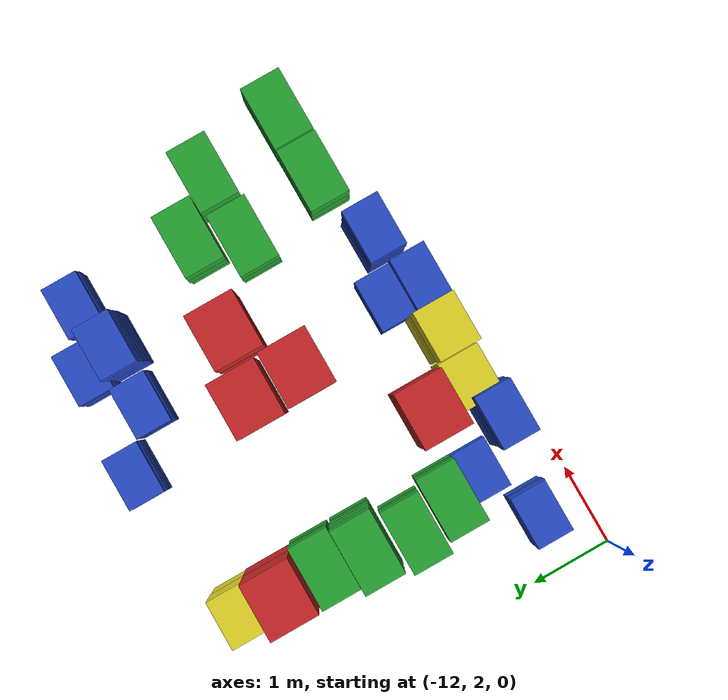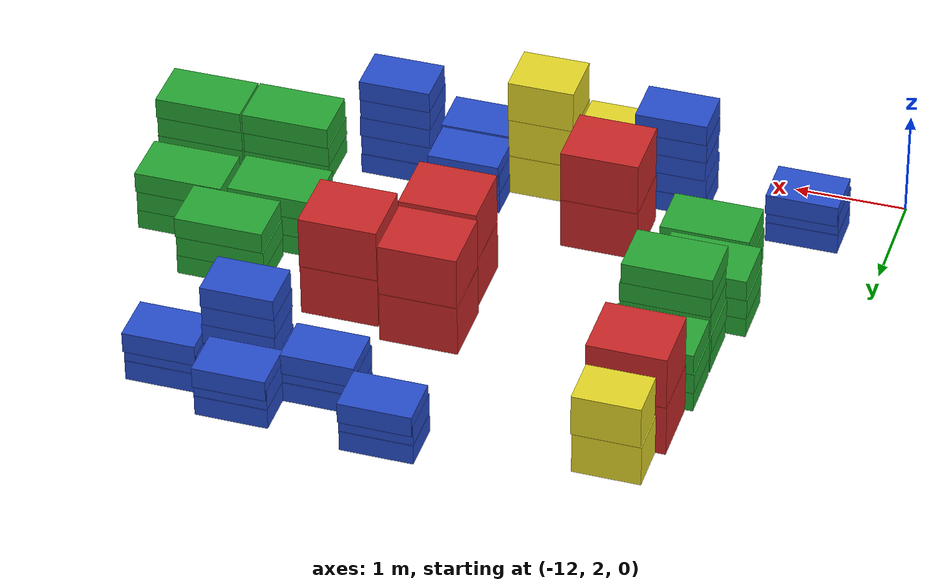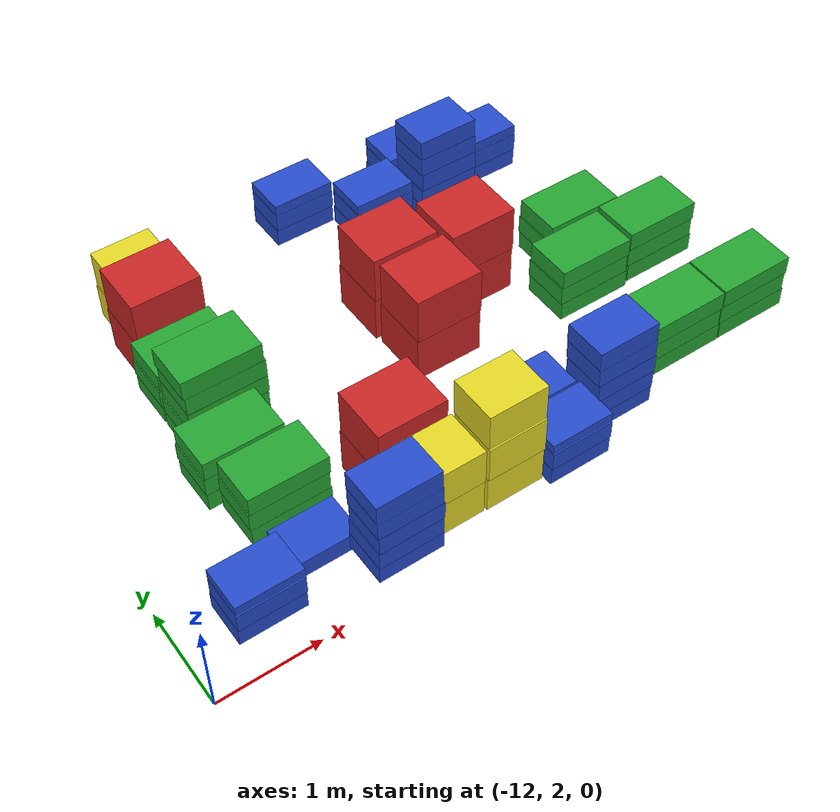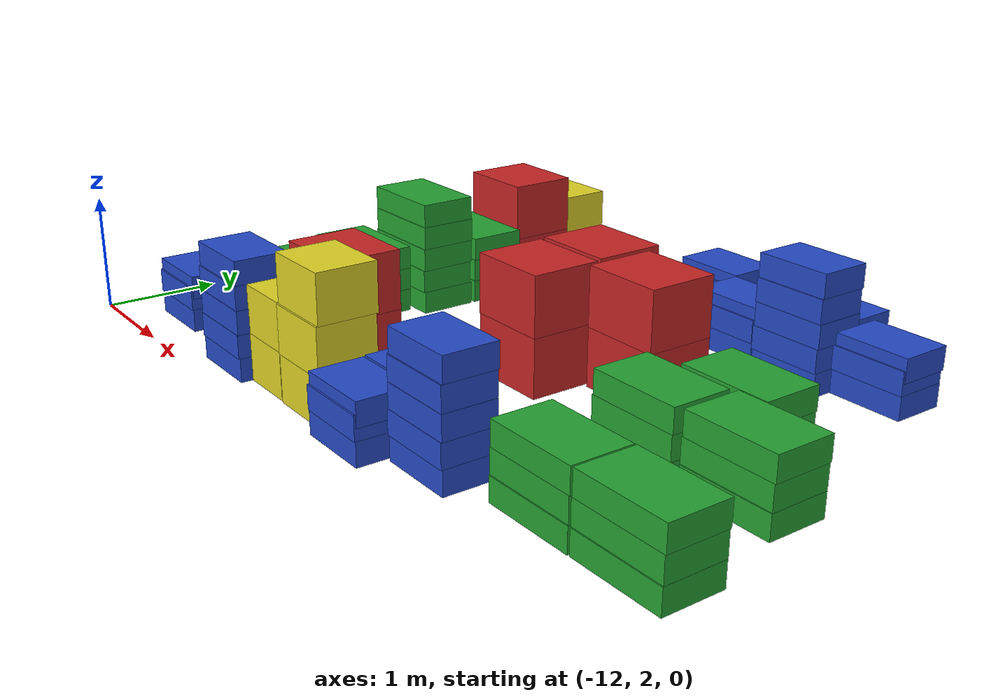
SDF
<sdf version="1.4">
 <model name="factory_baggage_group_B">
  <model name="baggage_B_x3_16">
   <model name="baggage_B_0">
    <static>1</static>
    <link name="link">
     <collision name="collision"><geometry><box><size>0.65 0.45 0.2</size></box></geometry></collision>
     <visual name="visual">
      <geometry><box><size>0.65 0.45 0.2</size></box></geometry>
      <material>
       <script><uri>file://media/materials/scripts/gazebo.material</uri><name>Gazebo/Blue</name></script>
      </material>
     </visual>
    </link>
    <pose>0 0 0.1 0 -0 0</pose>
   </model>
   <model name="baggage_B_1">
    <static>1</static>
    <link name="link">
     <collision name="collision"><geometry><box><size>0.65 0.45 0.2</size></box></geometry></collision>
     <visual name="visual">
      <geometry><box><size>0.65 0.45 0.2</size></box></geometry>
      <material>
       <script><uri>file://media/materials/scripts/gazebo.material</uri><name>Gazebo/Blue</name></script>
      </material>
     </visual>
    </link>
    <pose>0.0028 -0.0086 0.3 0 -0 0</pose>
   </model>
   <model name="baggage_B_2">
    <static>1</static>
    <link name="link">
     <collision name="collision"><geometry><box><size>0.65 0.45 0.2</size></box></geometry></collision>
     <visual name="visual">
      <geometry><box><size>0.65 0.45 0.2</size></box></geometry>
      <material>
       <script><uri>file://media/materials/scripts/gazebo.material</uri><name>Gazebo/Blue</name></script>
      </material>
     </visual>
    </link>
    <pose>0.0092 0.006 0.4 0 -0 0</pose>
   </model>
   <pose>-8.57325 6.36856 0 0 -0 0</pose>
  </model>
  <model name="baggage_B">
   <static>1</static>
   <link name="link">
    <collision name="collision"><geometry><box><size>0.65 0.45 0.2</size></box></geometry></collision>
    <visual name="visual">
     <geometry><box><size>0.65 0.45 0.2</size></box></geometry>
     <material>
      <script><uri>file://media/materials/scripts/gazebo.material</uri><name>Gazebo/Blue</name></script>
     </material>
    </visual>
   </link>
   <pose>-10.5257 2.89026 0 0 -0 0</pose>
  </model>
  <model name="baggage_B_x3_25">
   <model name="baggage_B_0">
    <static>1</static>
    <link name="link">
     <collision name="collision"><geometry><box><size>0.65 0.45 0.2</size></box></geometry></collision>
     <visual name="visual">
      <geometry><box><size>0.65 0.45 0.2</size></box></geometry>
      <material>
       <script><uri>file://media/materials/scripts/gazebo.material</uri><name>Gazebo/Blue</name></script>
      </material>
     </visual>
    </link>
    <pose>0 0 0.1 0 -0 0</pose>
   </model>
   <model name="baggage_B_1">
    <static>1</static>
    <link name="link">
     <collision name="collision"><geometry><box><size>0.65 0.45 0.2</size></box></geometry></collision>
     <visual name="visual">
      <geometry><box><size>0.65 0.45 0.2</size></box></geometry>
      <material>
       <script><uri>file://media/materials/scripts/gazebo.material</uri><name>Gazebo/Blue</name></script>
      </material>
     </visual>
    </link>
    <pose>0.0028 -0.0086 0.3 0 -0 0</pose>
   </model>
   <model name="baggage_B_2">
    <static>1</static>
    <link name="link">
     <collision name="collision"><geometry><box><size>0.65 0.45 0.2</size></box></geometry></collision>
     <visual name="visual">
      <geometry><box><size>0.65 0.45 0.2</size></box></geometry>
      <material>
       <script><uri>file://media/materials/scripts/gazebo.material</uri><name>Gazebo/Blue</name></script>
      </material>
     </visual>
    </link>
    <pose>0.0092 0.006 0.4 0 -0 0</pose>
   </model>
   <pose>-11.247 2.57319 0 0 -0 0</pose>
  </model>
  <model name="baggage_B_x5_22">
   <model name="baggage_B_0">
    <static>1</static>
    <link name="link">
     <collision name="collision"><geometry><box><size>0.65 0.45 0.2</size></box></geometry></collision>
     <visual name="visual">
      <geometry><box><size>0.65 0.45 0.2</size></box></geometry>
      <material>
       <script><uri>file://media/materials/scripts/gazebo.material</uri><name>Gazebo/Blue</name></script>
      </material>
     </visual>
    </link>
    <pose>0 0 0.1 0 -0 0</pose>
   </model>
   <model name="baggage_B_1">
    <static>1</static>
    <link name="link">
     <collision name="collision"><geometry><box><size>0.65 0.45 0.2</size></box></geometry></collision>
     <visual name="visual">
      <geometry><box><size>0.65 0.45 0.2</size></box></geometry>
      <material>
       <script><uri>file://media/materials/scripts/gazebo.material</uri><name>Gazebo/Blue</name></script>
      </material>
     </visual>
    </link>
    <pose>-0.0014 -0.0091 0.3 0 -0 0</pose>
   </model>
   <model name="baggage_B_2">
    <static>1</static>
    <link name="link">
     <collision name="collision"><geometry><box><size>0.65 0.45 0.2</size></box></geometry></collision>
     <visual name="visual">
      <geometry><box><size>0.65 0.45 0.2</size></box></geometry>
      <material>
       <script><uri>file://media/materials/scripts/gazebo.material</uri><name>Gazebo/Blue</name></script>
      </material>
     </visual>
    </link>
    <pose>0.0076 -0.0066 0.5 0 -0 0</pose>
   </model>
   <model name="baggage_B_3">
    <static>1</static>
    <link name="link">
     <collision name="collision"><geometry><box><size>0.65 0.45 0.2</size></box></geometry></collision>
     <visual name="visual">
      <geometry><box><size>0.65 0.45 0.2</size></box></geometry>
      <material>
       <script><uri>file://media/materials/scripts/gazebo.material</uri><name>Gazebo/Blue</name></script>
      </material>
     </visual>
    </link>
    <pose>0 -0.0032 0.7 0 -0 0</pose>
   </model>
   <model name="baggage_B_4">
    <static>1</static>
    <link name="link">
     <collision name="collision"><geometry><box><size>0.65 0.45 0.2</size></box></geometry></collision>
     <visual name="visual">
      <geometry><box><size>0.65 0.45 0.2</size></box></geometry>
      <material>
       <script><uri>file://media/materials/scripts/gazebo.material</uri><name>Gazebo/Blue</name></script>
      </material>
     </visual>
    </link>
    <pose>0.0023 0.0073 0.9 0 -0 0</pose>
   </model>
   <pose>-10.0025 2.41367 0 0 -0 0</pose>
  </model>
  <model name="baggage_D_x3_25">
   <model name="baggage_D_0">
    <static>1</static>
    <link name="link">
     <collision name="collision"><geometry><box><size>0.8 0.5 0.2</size></box></geometry></collision>
     <visual name="visual">
      <geometry><box><size>0.8 0.5 0.2</size></box></geometry>
      <material>
       <script><uri>file://media/materials/scripts/gazebo.material</uri><name>Gazebo/Green</name></script>
      </material>
     </visual>
    </link>
    <pose>0 0 0.1 0 -0 0</pose>
   </model>
   <model name="baggage_D_1">
    <static>1</static>
    <link name="link">
     <collision name="collision"><geometry><box><size>0.8 0.5 0.2</size></box></geometry></collision>
     <visual name="visual">
      <geometry><box><size>0.8 0.5 0.2</size></box></geometry>
      <material>
       <script><uri>file://media/materials/scripts/gazebo.material</uri><name>Gazebo/Green</name></script>
      </material>
     </visual>
    </link>
    <pose>-0.0056 0.0083 0.3 0 -0 0</pose>
   </model>
   <model name="baggage_D_2">
    <static>1</static>
    <link name="link">
     <collision name="collision"><geometry><box><size>0.8 0.5 0.2</size></box></geometry></collision>
     <visual name="visual">
      <geometry><box><size>0.8 0.5 0.2</size></box></geometry>
      <material>
       <script><uri>file://media/materials/scripts/gazebo.material</uri><name>Gazebo/Green</name></script>
      </material>
     </visual>
    </link>
    <pose>0.0053 0.0057 0.5 0 -0 0</pose>
   </model>
   <pose>-10.5852 3.37412 0 0 -0 0</pose>
  </model>
  <model name="baggage_D_x3_26">
   <model name="baggage_D_0">
    <static>1</static>
    <link name="link">
     <collision name="collision"><geometry><box><size>0.8 0.5 0.2</size></box></geometry></collision>
     <visual name="visual">
      <geometry><box><size>0.8 0.5 0.2</size></box></geometry>
      <material>
       <script><uri>file://media/materials/scripts/gazebo.material</uri><name>Gazebo/Green</name></script>
      </material>
     </visual>
    </link>
    <pose>0 0 0.1 0 -0 0</pose>
   </model>
   <model name="baggage_D_1">
    <static>1</static>
    <link name="link">
     <collision name="collision"><geometry><box><size>0.8 0.5 0.2</size></box></geometry></collision>
     <visual name="visual">
      <geometry><box><size>0.8 0.5 0.2</size></box></geometry>
      <material>
       <script><uri>file://media/materials/scripts/gazebo.material</uri><name>Gazebo/Green</name></script>
      </material>
     </visual>
    </link>
    <pose>-0.0056 0.0083 0.3 0 -0 0</pose>
   </model>
   <model name="baggage_D_2">
    <static>1</static>
    <link name="link">
     <collision name="collision"><geometry><box><size>0.8 0.5 0.2</size></box></geometry></collision>
     <visual name="visual">
      <geometry><box><size>0.8 0.5 0.2</size></box></geometry>
      <material>
       <script><uri>file://media/materials/scripts/gazebo.material</uri><name>Gazebo/Green</name></script>
      </material>
     </visual>
    </link>
    <pose>0.0053 0.0057 0.5 0 -0 0</pose>
   </model>
   <pose>-10.7024 3.90935 0 0 -0 0</pose>
  </model>
  <model name="baggage_D_x5_16">
   <model name="baggage_D_0">
    <static>1</static>
    <link name="link">
     <collision name="collision"><geometry><box><size>0.8 0.5 0.2</size></box></geometry></collision>
     <visual name="visual">
      <geometry><box><size>0.8 0.5 0.2</size></box></geometry>
      <material>
       <script><uri>file://media/materials/scripts/gazebo.material</uri><name>Gazebo/Green</name></script>
      </material>
     </visual>
    </link>
    <pose>0 0 0.1 0 -0 0</pose>
   </model>
   <model name="baggage_D_1">
    <static>1</static>
    <link name="link">
     <collision name="collision"><geometry><box><size>0.8 0.5 0.2</size></box></geometry></collision>
     <visual name="visual">
      <geometry><box><size>0.8 0.5 0.2</size></box></geometry>
      <material>
       <script><uri>file://media/materials/scripts/gazebo.material</uri><name>Gazebo/Green</name></script>
      </material>
     </visual>
    </link>
    <pose>-0.0065 -0.0092 0.3 0 -0 0</pose>
   </model>
   <model name="baggage_D_2">
    <static>1</static>
    <link name="link">
     <collision name="collision"><geometry><box><size>0.8 0.5 0.2</size></box></geometry></collision>
     <visual name="visual">
      <geometry><box><size>0.8 0.5 0.2</size></box></geometry>
      <material>
       <script><uri>file://media/materials/scripts/gazebo.material</uri><name>Gazebo/Green</name></script>
      </material>
     </visual>
    </link>
    <pose>0.005 -0.0052 0.5 0 -0 0</pose>
   </model>
   <model name="baggage_D_3">
    <static>1</static>
    <link name="link">
     <collision name="collision"><geometry><box><size>0.8 0.5 0.2</size></box></geometry></collision>
     <visual name="visual">
      <geometry><box><size>0.8 0.5 0.2</size></box></geometry>
      <material>
       <script><uri>file://media/materials/scripts/gazebo.material</uri><name>Gazebo/Green</name></script>
      </material>
     </visual>
    </link>
    <pose>0.0074 0.0002 0.7 0 -0 0</pose>
   </model>
   <model name="baggage_D_4">
    <static>1</static>
    <link name="link">
     <collision name="collision"><geometry><box><size>0.8 0.5 0.2</size></box></geometry></collision>
     <visual name="visual">
      <geometry><box><size>0.8 0.5 0.2</size></box></geometry>
      <material>
       <script><uri>file://media/materials/scripts/gazebo.material</uri><name>Gazebo/Green</name></script>
      </material>
     </visual>
    </link>
    <pose>-0.006 0.0081 0.9 0 -0 0</pose>
   </model>
   <pose>-10.5355 4.46719 0 0 -0 0</pose>
  </model>
  <model name="baggage_D_x3_27">
   <model name="baggage_D_0">
    <static>1</static>
    <link name="link">
     <collision name="collision"><geometry><box><size>0.8 0.5 0.2</size></box></geometry></collision>
     <visual name="visual">
      <geometry><box><size>0.8 0.5 0.2</size></box></geometry>
      <material>
       <script><uri>file://media/materials/scripts/gazebo.material</uri><name>Gazebo/Green</name></script>
      </material>
     </visual>
    </link>
    <pose>0 0 0.1 0 -0 0</pose>
   </model>
   <model name="baggage_D_1">
    <static>1</static>
    <link name="link">
     <collision name="collision"><geometry><box><size>0.8 0.5 0.2</size></box></geometry></collision>
     <visual name="visual">
      <geometry><box><size>0.8 0.5 0.2</size></box></geometry>
      <material>
       <script><uri>file://media/materials/scripts/gazebo.material</uri><name>Gazebo/Green</name></script>
      </material>
     </visual>
    </link>
    <pose>-0.0056 0.0083 0.3 0 -0 0</pose>
   </model>
   <model name="baggage_D_2">
    <static>1</static>
    <link name="link">
     <collision name="collision"><geometry><box><size>0.8 0.5 0.2</size></box></geometry></collision>
     <visual name="visual">
      <geometry><box><size>0.8 0.5 0.2</size></box></geometry>
      <material>
       <script><uri>file://media/materials/scripts/gazebo.material</uri><name>Gazebo/Green</name></script>
      </material>
     </visual>
    </link>
    <pose>0.0053 0.0057 0.5 0 -0 0</pose>
   </model>
   <pose>-10.5355 5.00263 0 0 -0 0</pose>
  </model>
  <model name="baggage_C_x2_32">
   <model name="baggage_C_0">
    <static>1</static>
    <link name="link">
     <collision name="collision"><geometry><box><size>0.6 0.5 0.4</size></box></geometry></collision>
     <visual name="visual">
      <geometry><box><size>0.6 0.5 0.4</size></box></geometry>
      <material>
       <script><uri>file://media/materials/scripts/gazebo.material</uri><name>Gazebo/Yellow</name></script>
      </material>
     </visual>
    </link>
    <pose>0 0 0.2 0 -0 0</pose>
   </model>
   <model name="baggage_C_1">
    <static>1</static>
    <link name="link">
     <collision name="collision"><geometry><box><size>0.6 0.5 0.4</size></box></geometry></collision>
     <visual name="visual">
      <geometry><box><size>0.6 0.5 0.4</size></box></geometry>
      <material>
       <script><uri>file://media/materials/scripts/gazebo.material</uri><name>Gazebo/Yellow</name></script>
      </material>
     </visual>
    </link>
    <pose>0.0093 -0.002 0.6 0 -0 0</pose>
   </model>
   <pose>-10.4771 6.04744 0 0 -0 0</pose>
  </model>
  <model name="baggage_A_x2_22">
   <model name="baggage_A_0">
    <static>1</static>
    <link name="link">
     <collision name="collision"><geometry><box><size>0.7 0.6 0.5</size></box></geometry></collision>
     <visual name="visual">
      <geometry><box><size>0.7 0.6 0.5</size></box></geometry>
      <material>
       <script><uri>file://media/materials/scripts/gazebo.material</uri><name>Gazebo/Red</name></script>
      </material>
     </visual>
    </link>
    <pose>0 0 0.25 0 -0 0</pose>
   </model>
   <model name="baggage_A_1">
    <static>1</static>
    <link name="link">
     <collision name="collision"><geometry><box><size>0.7 0.6 0.5</size></box></geometry></collision>
     <visual name="visual">
      <geometry><box><size>0.7 0.6 0.5</size></box></geometry>
      <material>
       <script><uri>file://media/materials/scripts/gazebo.material</uri><name>Gazebo/Red</name></script>
      </material>
     </visual>
    </link>
    <pose>0.0063 -0.0062 0.75 0 -0 0</pose>
   </model>
   <pose>-10.5171 5.56243 0 0 -0 0</pose>
  </model>
  <model name="baggage_C_x2_33">
   <model name="baggage_C_0">
    <static>1</static>
    <link name="link">
     <collision name="collision"><geometry><box><size>0.6 0.5 0.4</size></box></geometry></collision>
     <visual name="visual">
      <geometry><box><size>0.6 0.5 0.4</size></box></geometry>
      <material>
       <script><uri>file://media/materials/scripts/gazebo.material</uri><name>Gazebo/Yellow</name></script>
      </material>
     </visual>
    </link>
    <pose>0 0 0.2 0 -0 0</pose>
   </model>
   <model name="baggage_C_1">
    <static>1</static>
    <link name="link">
     <collision name="collision"><geometry><box><size>0.6 0.5 0.4</size></box></geometry></collision>
     <visual name="visual">
      <geometry><box><size>0.6 0.5 0.4</size></box></geometry>
      <material>
       <script><uri>file://media/materials/scripts/gazebo.material</uri><name>Gazebo/Yellow</name></script>
      </material>
     </visual>
    </link>
    <pose>0.0093 -0.002 0.6 0 -0 0</pose>
   </model>
   <pose>-9.48605 2.53889 0 0 -0 0</pose>
  </model>
  <model name="baggage_A_x2_23">
   <model name="baggage_A_0">
    <static>1</static>
    <link name="link">
     <collision name="collision"><geometry><box><size>0.7 0.6 0.5</size></box></geometry></collision>
     <visual name="visual">
      <geometry><box><size>0.7 0.6 0.5</size></box></geometry>
      <material>
       <script><uri>file://media/materials/scripts/gazebo.material</uri><name>Gazebo/Red</name></script>
      </material>
     </visual>
    </link>
    <pose>0 0 0.25 0 -0 0</pose>
   </model>
   <model name="baggage_A_1">
    <static>1</static>
    <link name="link">
     <collision name="collision"><geometry><box><size>0.7 0.6 0.5</size></box></geometry></collision>
     <visual name="visual">
      <geometry><box><size>0.7 0.6 0.5</size></box></geometry>
      <material>
       <script><uri>file://media/materials/scripts/gazebo.material</uri><name>Gazebo/Red</name></script>
      </material>
     </visual>
    </link>
    <pose>0.0063 -0.0062 0.75 0 -0 0</pose>
   </model>
   <pose>-9.56791 3.09169 0 0 -0 0</pose>
  </model>
  <model name="baggage_B_x3_26">
   <model name="baggage_B_0">
    <static>1</static>
    <link name="link">
     <collision name="collision"><geometry><box><size>0.65 0.45 0.2</size></box></geometry></collision>
     <visual name="visual">
      <geometry><box><size>0.65 0.45 0.2</size></box></geometry>
      <material>
       <script><uri>file://media/materials/scripts/gazebo.material</uri><name>Gazebo/Blue</name></script>
      </material>
     </visual>
    </link>
    <pose>0 0 0.1 0 -0 0</pose>
   </model>
   <model name="baggage_B_1">
    <static>1</static>
    <link name="link">
     <collision name="collision"><geometry><box><size>0.65 0.45 0.2</size></box></geometry></collision>
     <visual name="visual">
      <geometry><box><size>0.65 0.45 0.2</size></box></geometry>
      <material>
       <script><uri>file://media/materials/scripts/gazebo.material</uri><name>Gazebo/Blue</name></script>
      </material>
     </visual>
    </link>
    <pose>0.0028 -0.0086 0.3 0 -0 0</pose>
   </model>
   <model name="baggage_B_2">
    <static>1</static>
    <link name="link">
     <collision name="collision"><geometry><box><size>0.65 0.45 0.2</size></box></geometry></collision>
     <visual name="visual">
      <geometry><box><size>0.65 0.45 0.2</size></box></geometry>
      <material>
       <script><uri>file://media/materials/scripts/gazebo.material</uri><name>Gazebo/Blue</name></script>
      </material>
     </visual>
    </link>
    <pose>0.0092 0.006 0.4 0 -0 0</pose>
   </model>
   <pose>-7.9122 5.90124 0 0 -0 0</pose>
  </model>
  <model name="baggage_C_x3_32">
   <model name="baggage_C_0">
    <static>1</static>
    <link name="link">
     <collision name="collision"><geometry><box><size>0.6 0.5 0.4</size></box></geometry></collision>
     <visual name="visual">
      <geometry><box><size>0.6 0.5 0.4</size></box></geometry>
      <material>
       <script><uri>file://media/materials/scripts/gazebo.material</uri><name>Gazebo/Yellow</name></script>
      </material>
     </visual>
    </link>
    <pose>0 0 0.2 0 -0 0</pose>
   </model>
   <model name="baggage_C_1">
    <static>1</static>
    <link name="link">
     <collision name="collision"><geometry><box><size>0.6 0.5 0.4</size></box></geometry></collision>
     <visual name="visual">
      <geometry><box><size>0.6 0.5 0.4</size></box></geometry>
      <material>
       <script><uri>file://media/materials/scripts/gazebo.material</uri><name>Gazebo/Yellow</name></script>
      </material>
     </visual>
    </link>
    <pose>0.0062 -0.0069 0.6 0 -0 0</pose>
   </model>
   <model name="baggage_C_2">
    <static>1</static>
    <link name="link">
     <collision name="collision"><geometry><box><size>0.6 0.5 0.4</size></box></geometry></collision>
     <visual name="visual">
      <geometry><box><size>0.6 0.5 0.4</size></box></geometry>
      <material>
       <script><uri>file://media/materials/scripts/gazebo.material</uri><name>Gazebo/Yellow</name></script>
      </material>
     </visual>
    </link>
    <pose>0.0089 0.0083 1 0 -0 0</pose>
   </model>
   <pose>-8.85945 2.52958 0 0 -0 0</pose>
  </model>
  <model name="baggage_B_x3_27">
   <model name="baggage_B_0">
    <static>1</static>
    <link name="link">
     <collision name="collision"><geometry><box><size>0.65 0.45 0.2</size></box></geometry></collision>
     <visual name="visual">
      <geometry><box><size>0.65 0.45 0.2</size></box></geometry>
      <material>
       <script><uri>file://media/materials/scripts/gazebo.material</uri><name>Gazebo/Blue</name></script>
      </material>
     </visual>
    </link>
    <pose>0 0 0.1 0 -0 0</pose>
   </model>
   <model name="baggage_B_1">
    <static>1</static>
    <link name="link">
     <collision name="collision"><geometry><box><size>0.65 0.45 0.2</size></box></geometry></collision>
     <visual name="visual">
      <geometry><box><size>0.65 0.45 0.2</size></box></geometry>
      <material>
       <script><uri>file://media/materials/scripts/gazebo.material</uri><name>Gazebo/Blue</name></script>
      </material>
     </visual>
    </link>
    <pose>0.0028 -0.0086 0.3 0 -0 0</pose>
   </model>
   <model name="baggage_B_2">
    <static>1</static>
    <link name="link">
     <collision name="collision"><geometry><box><size>0.65 0.45 0.2</size></box></geometry></collision>
     <visual name="visual">
      <geometry><box><size>0.65 0.45 0.2</size></box></geometry>
      <material>
       <script><uri>file://media/materials/scripts/gazebo.material</uri><name>Gazebo/Blue</name></script>
      </material>
     </visual>
    </link>
    <pose>0.0092 0.006 0.4 0 -0 0</pose>
   </model>
   <pose>-8.21698 2.40711 0 0 -0 0</pose>
  </model>
  <model name="baggage_B_x3_28">
   <model name="baggage_B_0">
    <static>1</static>
    <link name="link">
     <collision name="collision"><geometry><box><size>0.65 0.45 0.2</size></box></geometry></collision>
     <visual name="visual">
      <geometry><box><size>0.65 0.45 0.2</size></box></geometry>
      <material>
       <script><uri>file://media/materials/scripts/gazebo.material</uri><name>Gazebo/Blue</name></script>
      </material>
     </visual>
    </link>
    <pose>0 0 0.1 0 -0 0</pose>
   </model>
   <model name="baggage_B_1">
    <static>1</static>
    <link name="link">
     <collision name="collision"><geometry><box><size>0.65 0.45 0.2</size></box></geometry></collision>
     <visual name="visual">
      <geometry><box><size>0.65 0.45 0.2</size></box></geometry>
      <material>
       <script><uri>file://media/materials/scripts/gazebo.material</uri><name>Gazebo/Blue</name></script>
      </material>
     </visual>
    </link>
    <pose>0.0028 -0.0086 0.3 0 -0 0</pose>
   </model>
   <model name="baggage_B_2">
    <static>1</static>
    <link name="link">
     <collision name="collision"><geometry><box><size>0.65 0.45 0.2</size></box></geometry></collision>
     <visual name="visual">
      <geometry><box><size>0.65 0.45 0.2</size></box></geometry>
      <material>
       <script><uri>file://media/materials/scripts/gazebo.material</uri><name>Gazebo/Blue</name></script>
      </material>
     </visual>
    </link>
    <pose>0.0092 0.006 0.4 0 -0 0</pose>
   </model>
   <pose>-8.24075 2.8792 0 0 -0 0</pose>
  </model>
  <model name="baggage_B_x5_23">
   <model name="baggage_B_0">
    <static>1</static>
    <link name="link">
     <collision name="collision"><geometry><box><size>0.65 0.45 0.2</size></box></geometry></collision>
     <visual name="visual">
      <geometry><box><size>0.65 0.45 0.2</size></box></geometry>
      <material>
       <script><uri>file://media/materials/scripts/gazebo.material</uri><name>Gazebo/Blue</name></script>
      </material>
     </visual>
    </link>
    <pose>0 0 0.1 0 -0 0</pose>
   </model>
   <model name="baggage_B_1">
    <static>1</static>
    <link name="link">
     <collision name="collision"><geometry><box><size>0.65 0.45 0.2</size></box></geometry></collision>
     <visual name="visual">
      <geometry><box><size>0.65 0.45 0.2</size></box></geometry>
      <material>
       <script><uri>file://media/materials/scripts/gazebo.material</uri><name>Gazebo/Blue</name></script>
      </material>
     </visual>
    </link>
    <pose>-0.0014 -0.0091 0.3 0 -0 0</pose>
   </model>
   <model name="baggage_B_2">
    <static>1</static>
    <link name="link">
     <collision name="collision"><geometry><box><size>0.65 0.45 0.2</size></box></geometry></collision>
     <visual name="visual">
      <geometry><box><size>0.65 0.45 0.2</size></box></geometry>
      <material>
       <script><uri>file://media/materials/scripts/gazebo.material</uri><name>Gazebo/Blue</name></script>
      </material>
     </visual>
    </link>
    <pose>0.0076 -0.0066 0.5 0 -0 0</pose>
   </model>
   <model name="baggage_B_3">
    <static>1</static>
    <link name="link">
     <collision name="collision"><geometry><box><size>0.65 0.45 0.2</size></box></geometry></collision>
     <visual name="visual">
      <geometry><box><size>0.65 0.45 0.2</size></box></geometry>
      <material>
       <script><uri>file://media/materials/scripts/gazebo.material</uri><name>Gazebo/Blue</name></script>
      </material>
     </visual>
    </link>
    <pose>0 -0.0032 0.7 0 -0 0</pose>
   </model>
   <model name="baggage_B_4">
    <static>1</static>
    <link name="link">
     <collision name="collision"><geometry><box><size>0.65 0.45 0.2</size></box></geometry></collision>
     <visual name="visual">
      <geometry><box><size>0.65 0.45 0.2</size></box></geometry>
      <material>
       <script><uri>file://media/materials/scripts/gazebo.material</uri><name>Gazebo/Blue</name></script>
      </material>
     </visual>
    </link>
    <pose>0.0023 0.0073 0.9 0 -0 0</pose>
   </model>
   <pose>-7.53212 2.65285 0 0 -0 0</pose>
  </model>
  <model name="baggage_D_x3_29">
   <model name="baggage_D_0">
    <static>1</static>
    <link name="link">
     <collision name="collision"><geometry><box><size>0.8 0.5 0.2</size></box></geometry></collision>
     <visual name="visual">
      <geometry><box><size>0.8 0.5 0.2</size></box></geometry>
      <material>
       <script><uri>file://media/materials/scripts/gazebo.material</uri><name>Gazebo/Green</name></script>
      </material>
     </visual>
    </link>
    <pose>0 0 0.1 0 -0 0</pose>
   </model>
   <model name="baggage_D_1">
    <static>1</static>
    <link name="link">
     <collision name="collision"><geometry><box><size>0.8 0.5 0.2</size></box></geometry></collision>
     <visual name="visual">
      <geometry><box><size>0.8 0.5 0.2</size></box></geometry>
      <material>
       <script><uri>file://media/materials/scripts/gazebo.material</uri><name>Gazebo/Green</name></script>
      </material>
     </visual>
    </link>
    <pose>-0.0056 0.0083 0.3 0 -0 0</pose>
   </model>
   <model name="baggage_D_2">
    <static>1</static>
    <link name="link">
     <collision name="collision"><geometry><box><size>0.8 0.5 0.2</size></box></geometry></collision>
     <visual name="visual">
      <geometry><box><size>0.8 0.5 0.2</size></box></geometry>
      <material>
       <script><uri>file://media/materials/scripts/gazebo.material</uri><name>Gazebo/Green</name></script>
      </material>
     </visual>
    </link>
    <pose>0.0053 0.0057 0.5 0 -0 0</pose>
   </model>
   <pose>-6.58573 2.88666 0 0 -0 0</pose>
  </model>
  <model name="baggage_D_x3_31">
   <model name="baggage_D_0">
    <static>1</static>
    <link name="link">
     <collision name="collision"><geometry><box><size>0.8 0.5 0.2</size></box></geometry></collision>
     <visual name="visual">
      <geometry><box><size>0.8 0.5 0.2</size></box></geometry>
      <material>
       <script><uri>file://media/materials/scripts/gazebo.material</uri><name>Gazebo/Green</name></script>
      </material>
     </visual>
    </link>
    <pose>0 0 0.1 0 -0 0</pose>
   </model>
   <model name="baggage_D_1">
    <static>1</static>
    <link name="link">
     <collision name="collision"><geometry><box><size>0.8 0.5 0.2</size></box></geometry></collision>
     <visual name="visual">
      <geometry><box><size>0.8 0.5 0.2</size></box></geometry>
      <material>
       <script><uri>file://media/materials/scripts/gazebo.material</uri><name>Gazebo/Green</name></script>
      </material>
     </visual>
    </link>
    <pose>-0.0056 0.0083 0.3 0 -0 0</pose>
   </model>
   <model name="baggage_D_2">
    <static>1</static>
    <link name="link">
     <collision name="collision"><geometry><box><size>0.8 0.5 0.2</size></box></geometry></collision>
     <visual name="visual">
      <geometry><box><size>0.8 0.5 0.2</size></box></geometry>
      <material>
       <script><uri>file://media/materials/scripts/gazebo.material</uri><name>Gazebo/Green</name></script>
      </material>
     </visual>
    </link>
    <pose>0.0053 0.0057 0.5 0 -0 0</pose>
   </model>
   <pose>-5.76935 2.8901 0 0 -0 0</pose>
  </model>
  <model name="baggage_A_x2_25">
   <model name="baggage_A_0">
    <static>1</static>
    <link name="link">
     <collision name="collision"><geometry><box><size>0.7 0.6 0.5</size></box></geometry></collision>
     <visual name="visual">
      <geometry><box><size>0.7 0.6 0.5</size></box></geometry>
      <material>
       <script><uri>file://media/materials/scripts/gazebo.material</uri><name>Gazebo/Red</name></script>
      </material>
     </visual>
    </link>
    <pose>0 0 0.25 0 -0 0</pose>
   </model>
   <model name="baggage_A_1">
    <static>1</static>
    <link name="link">
     <collision name="collision"><geometry><box><size>0.7 0.6 0.5</size></box></geometry></collision>
     <visual name="visual">
      <geometry><box><size>0.7 0.6 0.5</size></box></geometry>
      <material>
       <script><uri>file://media/materials/scripts/gazebo.material</uri><name>Gazebo/Red</name></script>
      </material>
     </visual>
    </link>
    <pose>0.0063 -0.0062 0.75 0 -0 0</pose>
   </model>
   <pose>-8.46245 4.80823 0 0 -0 0</pose>
  </model>
  <model name="baggage_A_x2_26">
   <model name="baggage_A_0">
    <static>1</static>
    <link name="link">
     <collision name="collision"><geometry><box><size>0.7 0.6 0.5</size></box></geometry></collision>
     <visual name="visual">
      <geometry><box><size>0.7 0.6 0.5</size></box></geometry>
      <material>
       <script><uri>file://media/materials/scripts/gazebo.material</uri><name>Gazebo/Red</name></script>
      </material>
     </visual>
    </link>
    <pose>0 0 0.25 0 -0 0</pose>
   </model>
   <model name="baggage_A_1">
    <static>1</static>
    <link name="link">
     <collision name="collision"><geometry><box><size>0.7 0.6 0.5</size></box></geometry></collision>
     <visual name="visual">
      <geometry><box><size>0.7 0.6 0.5</size></box></geometry>
      <material>
       <script><uri>file://media/materials/scripts/gazebo.material</uri><name>Gazebo/Red</name></script>
      </material>
     </visual>
    </link>
    <pose>0.0063 -0.0062 0.75 0 -0 0</pose>
   </model>
   <pose>-7.69689 4.64441 0 0 -0 0</pose>
  </model>
  <model name="baggage_A_x2_27">
   <model name="baggage_A_0">
    <static>1</static>
    <link name="link">
     <collision name="collision"><geometry><box><size>0.7 0.6 0.5</size></box></geometry></collision>
     <visual name="visual">
      <geometry><box><size>0.7 0.6 0.5</size></box></geometry>
      <material>
       <script><uri>file://media/materials/scripts/gazebo.material</uri><name>Gazebo/Red</name></script>
      </material>
     </visual>
    </link>
    <pose>0 0 0.25 0 -0 0</pose>
   </model>
   <model name="baggage_A_1">
    <static>1</static>
    <link name="link">
     <collision name="collision"><geometry><box><size>0.7 0.6 0.5</size></box></geometry></collision>
     <visual name="visual">
      <geometry><box><size>0.7 0.6 0.5</size></box></geometry>
      <material>
       <script><uri>file://media/materials/scripts/gazebo.material</uri><name>Gazebo/Red</name></script>
      </material>
     </visual>
    </link>
    <pose>0.0063 -0.0062 0.75 0 -0 0</pose>
   </model>
   <pose>-8.43497 4.15252 0 0 -0 0</pose>
  </model>
  <model name="baggage_D_x3_33">
   <model name="baggage_D_0">
    <static>1</static>
    <link name="link">
     <collision name="collision"><geometry><box><size>0.8 0.5 0.2</size></box></geometry></collision>
     <visual name="visual">
      <geometry><box><size>0.8 0.5 0.2</size></box></geometry>
      <material>
       <script><uri>file://media/materials/scripts/gazebo.material</uri><name>Gazebo/Green</name></script>
      </material>
     </visual>
    </link>
    <pose>0 0 0.1 0 -0 0</pose>
   </model>
   <model name="baggage_D_1">
    <static>1</static>
    <link name="link">
     <collision name="collision"><geometry><box><size>0.8 0.5 0.2</size></box></geometry></collision>
     <visual name="visual">
      <geometry><box><size>0.8 0.5 0.2</size></box></geometry>
      <material>
       <script><uri>file://media/materials/scripts/gazebo.material</uri><name>Gazebo/Green</name></script>
      </material>
     </visual>
    </link>
    <pose>-0.0056 0.0083 0.3 0 -0 0</pose>
   </model>
   <model name="baggage_D_2">
    <static>1</static>
    <link name="link">
     <collision name="collision"><geometry><box><size>0.8 0.5 0.2</size></box></geometry></collision>
     <visual name="visual">
      <geometry><box><size>0.8 0.5 0.2</size></box></geometry>
      <material>
       <script><uri>file://media/materials/scripts/gazebo.material</uri><name>Gazebo/Green</name></script>
      </material>
     </visual>
    </link>
    <pose>0.0053 0.0057 0.5 0 -0 0</pose>
   </model>
   <pose>-6.53517 4.48877 0 0 -0 0</pose>
  </model>
  <model name="baggage_D_x3_34">
   <model name="baggage_D_0">
    <static>1</static>
    <link name="link">
     <collision name="collision"><geometry><box><size>0.8 0.5 0.2</size></box></geometry></collision>
     <visual name="visual">
      <geometry><box><size>0.8 0.5 0.2</size></box></geometry>
      <material>
       <script><uri>file://media/materials/scripts/gazebo.material</uri><name>Gazebo/Green</name></script>
      </material>
     </visual>
    </link>
    <pose>0 0 0.1 0 -0 0</pose>
   </model>
   <model name="baggage_D_1">
    <static>1</static>
    <link name="link">
     <collision name="collision"><geometry><box><size>0.8 0.5 0.2</size></box></geometry></collision>
     <visual name="visual">
      <geometry><box><size>0.8 0.5 0.2</size></box></geometry>
      <material>
       <script><uri>file://media/materials/scripts/gazebo.material</uri><name>Gazebo/Green</name></script>
      </material>
     </visual>
    </link>
    <pose>-0.0056 0.0083 0.3 0 -0 0</pose>
   </model>
   <model name="baggage_D_2">
    <static>1</static>
    <link name="link">
     <collision name="collision"><geometry><box><size>0.8 0.5 0.2</size></box></geometry></collision>
     <visual name="visual">
      <geometry><box><size>0.8 0.5 0.2</size></box></geometry>
      <material>
       <script><uri>file://media/materials/scripts/gazebo.material</uri><name>Gazebo/Green</name></script>
      </material>
     </visual>
    </link>
    <pose>0.0053 0.0057 0.5 0 -0 0</pose>
   </model>
   <pose>-6.82832 3.94231 0 0 -0 0</pose>
  </model>
  <model name="baggage_D_x3_35">
   <model name="baggage_D_0">
    <static>1</static>
    <link name="link">
     <collision name="collision"><geometry><box><size>0.8 0.5 0.2</size></box></geometry></collision>
     <visual name="visual">
      <geometry><box><size>0.8 0.5 0.2</size></box></geometry>
      <material>
       <script><uri>file://media/materials/scripts/gazebo.material</uri><name>Gazebo/Green</name></script>
      </material>
     </visual>
    </link>
    <pose>0 0 0.1 0 -0 0</pose>
   </model>
   <model name="baggage_D_1">
    <static>1</static>
    <link name="link">
     <collision name="collision"><geometry><box><size>0.8 0.5 0.2</size></box></geometry></collision>
     <visual name="visual">
      <geometry><box><size>0.8 0.5 0.2</size></box></geometry>
      <material>
       <script><uri>file://media/materials/scripts/gazebo.material</uri><name>Gazebo/Green</name></script>
      </material>
     </visual>
    </link>
    <pose>-0.0056 0.0083 0.3 0 -0 0</pose>
   </model>
   <model name="baggage_D_2">
    <static>1</static>
    <link name="link">
     <collision name="collision"><geometry><box><size>0.8 0.5 0.2</size></box></geometry></collision>
     <visual name="visual">
      <geometry><box><size>0.8 0.5 0.2</size></box></geometry>
      <material>
       <script><uri>file://media/materials/scripts/gazebo.material</uri><name>Gazebo/Green</name></script>
      </material>
     </visual>
    </link>
    <pose>0.0053 0.0057 0.5 0 -0 0</pose>
   </model>
   <pose>-5.97921 3.97925 0 0 -0 0</pose>
  </model>
  <model name="baggage_B_x3_30">
   <model name="baggage_B_0">
    <static>1</static>
    <link name="link">
     <collision name="collision"><geometry><box><size>0.65 0.45 0.2</size></box></geometry></collision>
     <visual name="visual">
      <geometry><box><size>0.65 0.45 0.2</size></box></geometry>
      <material>
       <script><uri>file://media/materials/scripts/gazebo.material</uri><name>Gazebo/Blue</name></script>
      </material>
     </visual>
    </link>
    <pose>0 0 0.1 0 -0 0</pose>
   </model>
   <model name="baggage_B_1">
    <static>1</static>
    <link name="link">
     <collision name="collision"><geometry><box><size>0.65 0.45 0.2</size></box></geometry></collision>
     <visual name="visual">
      <geometry><box><size>0.65 0.45 0.2</size></box></geometry>
      <material>
       <script><uri>file://media/materials/scripts/gazebo.material</uri><name>Gazebo/Blue</name></script>
      </material>
     </visual>
    </link>
    <pose>0.0028 -0.0086 0.3 0 -0 0</pose>
   </model>
   <model name="baggage_B_2">
    <static>1</static>
    <link name="link">
     <collision name="collision"><geometry><box><size>0.65 0.45 0.2</size></box></geometry></collision>
     <visual name="visual">
      <geometry><box><size>0.65 0.45 0.2</size></box></geometry>
      <material>
       <script><uri>file://media/materials/scripts/gazebo.material</uri><name>Gazebo/Blue</name></script>
      </material>
     </visual>
    </link>
    <pose>0.0092 0.006 0.4 0 -0 0</pose>
   </model>
   <pose>-7.26473 6.28545 0 0 -0 0</pose>
  </model>
  <model name="baggage_B_x5_24">
   <model name="baggage_B_0">
    <static>1</static>
    <link name="link">
     <collision name="collision"><geometry><box><size>0.65 0.45 0.2</size></box></geometry></collision>
     <visual name="visual">
      <geometry><box><size>0.65 0.45 0.2</size></box></geometry>
      <material>
       <script><uri>file://media/materials/scripts/gazebo.material</uri><name>Gazebo/Blue</name></script>
      </material>
     </visual>
    </link>
    <pose>0 0 0.1 0 -0 0</pose>
   </model>
   <model name="baggage_B_1">
    <static>1</static>
    <link name="link">
     <collision name="collision"><geometry><box><size>0.65 0.45 0.2</size></box></geometry></collision>
     <visual name="visual">
      <geometry><box><size>0.65 0.45 0.2</size></box></geometry>
      <material>
       <script><uri>file://media/materials/scripts/gazebo.material</uri><name>Gazebo/Blue</name></script>
      </material>
     </visual>
    </link>
    <pose>-0.0014 -0.0091 0.3 0 -0 0</pose>
   </model>
   <model name="baggage_B_2">
    <static>1</static>
    <link name="link">
     <collision name="collision"><geometry><box><size>0.65 0.45 0.2</size></box></geometry></collision>
     <visual name="visual">
      <geometry><box><size>0.65 0.45 0.2</size></box></geometry>
      <material>
       <script><uri>file://media/materials/scripts/gazebo.material</uri><name>Gazebo/Blue</name></script>
      </material>
     </visual>
    </link>
    <pose>0.0076 -0.0066 0.5 0 -0 0</pose>
   </model>
   <model name="baggage_B_3">
    <static>1</static>
    <link name="link">
     <collision name="collision"><geometry><box><size>0.65 0.45 0.2</size></box></geometry></collision>
     <visual name="visual">
      <geometry><box><size>0.65 0.45 0.2</size></box></geometry>
      <material>
       <script><uri>file://media/materials/scripts/gazebo.material</uri><name>Gazebo/Blue</name></script>
      </material>
     </visual>
    </link>
    <pose>0 -0.0032 0.7 0 -0 0</pose>
   </model>
   <model name="baggage_B_4">
    <static>1</static>
    <link name="link">
     <collision name="collision"><geometry><box><size>0.65 0.45 0.2</size></box></geometry></collision>
     <visual name="visual">
      <geometry><box><size>0.65 0.45 0.2</size></box></geometry>
      <material>
       <script><uri>file://media/materials/scripts/gazebo.material</uri><name>Gazebo/Blue</name></script>
      </material>
     </visual>
    </link>
    <pose>0.0023 0.0073 0.9 0 -0 0</pose>
   </model>
   <pose>-7.18797 5.8315 0 0 -0 0</pose>
  </model>
  <model name="baggage_B_x3_33">
   <model name="baggage_B_0">
    <static>1</static>
    <link name="link">
     <collision name="collision"><geometry><box><size>0.65 0.45 0.2</size></box></geometry></collision>
     <visual name="visual">
      <geometry><box><size>0.65 0.45 0.2</size></box></geometry>
      <material>
       <script><uri>file://media/materials/scripts/gazebo.material</uri><name>Gazebo/Blue</name></script>
      </material>
     </visual>
    </link>
    <pose>0 0 0.1 0 -0 0</pose>
   </model>
   <model name="baggage_B_1">
    <static>1</static>
    <link name="link">
     <collision name="collision"><geometry><box><size>0.65 0.45 0.2</size></box></geometry></collision>
     <visual name="visual">
      <geometry><box><size>0.65 0.45 0.2</size></box></geometry>
      <material>
       <script><uri>file://media/materials/scripts/gazebo.material</uri><name>Gazebo/Blue</name></script>
      </material>
     </visual>
    </link>
    <pose>0.0028 -0.0086 0.3 0 -0 0</pose>
   </model>
   <model name="baggage_B_2">
    <static>1</static>
    <link name="link">
     <collision name="collision"><geometry><box><size>0.65 0.45 0.2</size></box></geometry></collision>
     <visual name="visual">
      <geometry><box><size>0.65 0.45 0.2</size></box></geometry>
      <material>
       <script><uri>file://media/materials/scripts/gazebo.material</uri><name>Gazebo/Blue</name></script>
      </material>
     </visual>
    </link>
    <pose>0.0092 0.006 0.4 0 -0 0</pose>
   </model>
   <pose>-6.54306 6.01513 0 0 -0 0</pose>
  </model>
 </model>
</sdf>
